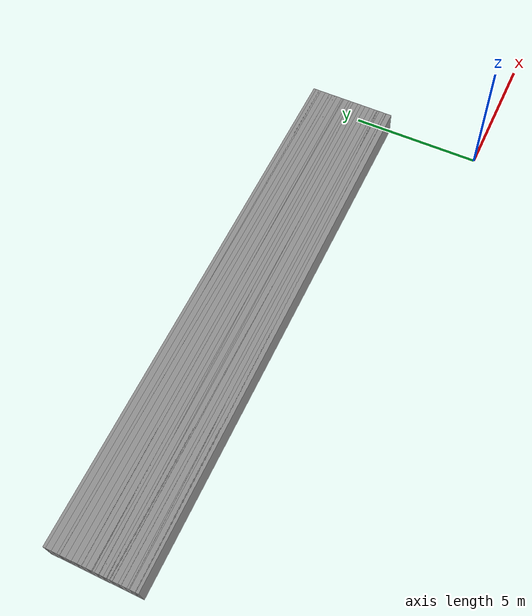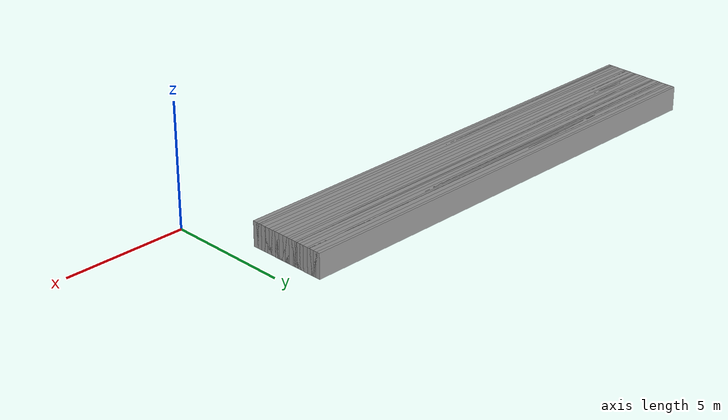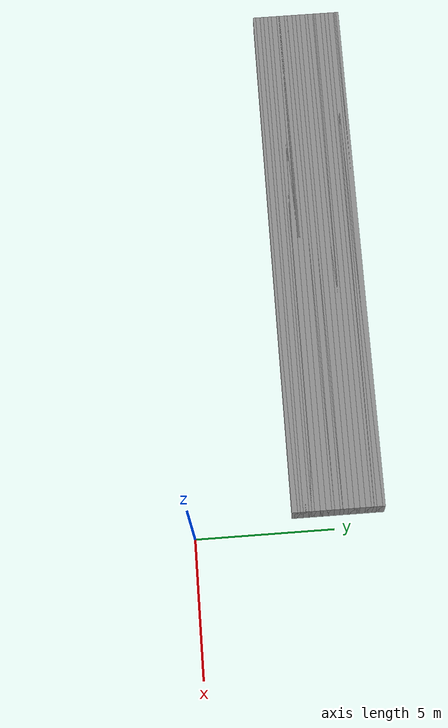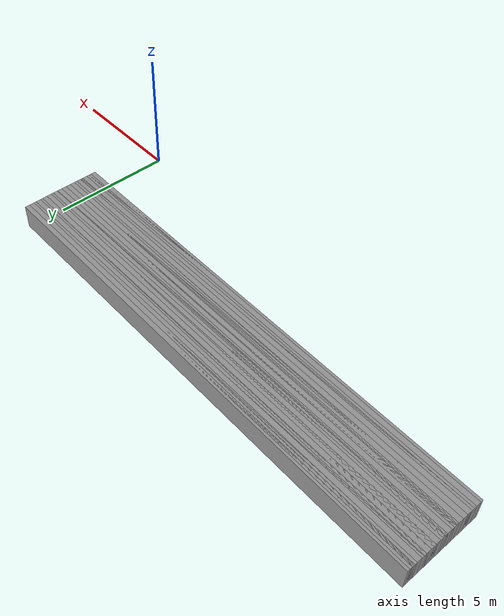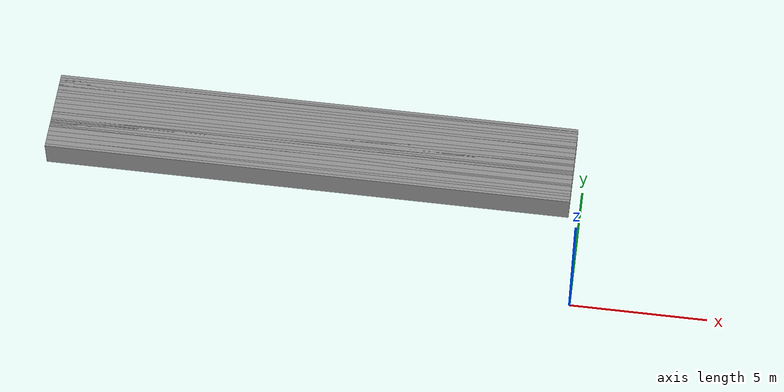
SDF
<sdf version="1.6">
 <world name="GridMap">
  <model name="GridMap">
   <link name="Wall_(101.5,36.0)">
    <collision name="Wall_(101.5,36.0)_Collision">
     <geometry><box><size>19.5 0.2 1.0</size></box></geometry>
     <pose>-10.15 3.6 0.5 0 -0 0</pose>
    </collision>
    <visual name="Wall_(101.5,36.0)_Visual">
     <geometry><box><size>19.5 0.2 1.0</size></box></geometry>
     <pose>-10.15 3.6 0.5 0 -0 0</pose>
     <material>
      <script><uri>file://media/materials/scripts/gazebo.material</uri><name>Gazebo/Grey</name></script>
      <ambient>1 1 1 1</ambient>
     </material>
     <meta><layer>0</layer></meta>
    </visual>
    <pose>0 0 0.5 0 -0 0</pose>
   </link>
   <link name="Wall_(101.5,37.0)">
    <collision name="Wall_(101.5,37.0)_Collision">
     <geometry><box><size>19.5 0.2 1.0</size></box></geometry>
     <pose>-10.15 3.7 0.5 0 -0 0</pose>
    </collision>
    <visual name="Wall_(101.5,37.0)_Visual">
     <geometry><box><size>19.5 0.2 1.0</size></box></geometry>
     <pose>-10.15 3.7 0.5 0 -0 0</pose>
     <material>
      <script><uri>file://media/materials/scripts/gazebo.material</uri><name>Gazebo/Grey</name></script>
      <ambient>1 1 1 1</ambient>
     </material>
     <meta><layer>0</layer></meta>
    </visual>
    <pose>0 0 0.5 0 -0 0</pose>
   </link>
   <link name="Wall_(101.5,38.0)">
    <collision name="Wall_(101.5,38.0)_Collision">
     <geometry><box><size>19.5 0.2 1.0</size></box></geometry>
     <pose>-10.15 3.8000000000000003 0.5 0 -0 0</pose>
    </collision>
    <visual name="Wall_(101.5,38.0)_Visual">
     <geometry><box><size>19.5 0.2 1.0</size></box></geometry>
     <pose>-10.15 3.8000000000000003 0.5 0 -0 0</pose>
     <material>
      <script><uri>file://media/materials/scripts/gazebo.material</uri><name>Gazebo/Grey</name></script>
      <ambient>1 1 1 1</ambient>
     </material>
     <meta><layer>0</layer></meta>
    </visual>
    <pose>0 0 0.5 0 -0 0</pose>
   </link>
   <link name="Wall_(101.5,39.0)">
    <collision name="Wall_(101.5,39.0)_Collision">
     <geometry><box><size>19.5 0.2 1.0</size></box></geometry>
     <pose>-10.15 3.9000000000000004 0.5 0 -0 0</pose>
    </collision>
    <visual name="Wall_(101.5,39.0)_Visual">
     <geometry><box><size>19.5 0.2 1.0</size></box></geometry>
     <pose>-10.15 3.9000000000000004 0.5 0 -0 0</pose>
     <material>
      <script><uri>file://media/materials/scripts/gazebo.material</uri><name>Gazebo/Grey</name></script>
      <ambient>1 1 1 1</ambient>
     </material>
     <meta><layer>0</layer></meta>
    </visual>
    <pose>0 0 0.5 0 -0 0</pose>
   </link>
   <link name="Wall_(101.5,40.0)">
    <collision name="Wall_(101.5,40.0)_Collision">
     <geometry><box><size>19.5 0.2 1.0</size></box></geometry>
     <pose>-10.15 4.0 0.5 0 -0 0</pose>
    </collision>
    <visual name="Wall_(101.5,40.0)_Visual">
     <geometry><box><size>19.5 0.2 1.0</size></box></geometry>
     <pose>-10.15 4.0 0.5 0 -0 0</pose>
     <material>
      <script><uri>file://media/materials/scripts/gazebo.material</uri><name>Gazebo/Grey</name></script>
      <ambient>1 1 1 1</ambient>
     </material>
     <meta><layer>0</layer></meta>
    </visual>
    <pose>0 0 0.5 0 -0 0</pose>
   </link>
   <link name="Wall_(101.5,41.0)">
    <collision name="Wall_(101.5,41.0)_Collision">
     <geometry><box><size>19.5 0.2 1.0</size></box></geometry>
     <pose>-10.15 4.1000000000000005 0.5 0 -0 0</pose>
    </collision>
    <visual name="Wall_(101.5,41.0)_Visual">
     <geometry><box><size>19.5 0.2 1.0</size></box></geometry>
     <pose>-10.15 4.1000000000000005 0.5 0 -0 0</pose>
     <material>
      <script><uri>file://media/materials/scripts/gazebo.material</uri><name>Gazebo/Grey</name></script>
      <ambient>1 1 1 1</ambient>
     </material>
     <meta><layer>0</layer></meta>
    </visual>
    <pose>0 0 0.5 0 -0 0</pose>
   </link>
   <link name="Wall_(101.5,42.0)">
    <collision name="Wall_(101.5,42.0)_Collision">
     <geometry><box><size>19.5 0.2 1.0</size></box></geometry>
     <pose>-10.15 4.2 0.5 0 -0 0</pose>
    </collision>
    <visual name="Wall_(101.5,42.0)_Visual">
     <geometry><box><size>19.5 0.2 1.0</size></box></geometry>
     <pose>-10.15 4.2 0.5 0 -0 0</pose>
     <material>
      <script><uri>file://media/materials/scripts/gazebo.material</uri><name>Gazebo/Grey</name></script>
      <ambient>1 1 1 1</ambient>
     </material>
     <meta><layer>0</layer></meta>
    </visual>
    <pose>0 0 0.5 0 -0 0</pose>
   </link>
   <link name="Wall_(101.5,43.0)">
    <collision name="Wall_(101.5,43.0)_Collision">
     <geometry><box><size>19.5 0.2 1.0</size></box></geometry>
     <pose>-10.15 4.3 0.5 0 -0 0</pose>
    </collision>
    <visual name="Wall_(101.5,43.0)_Visual">
     <geometry><box><size>19.5 0.2 1.0</size></box></geometry>
     <pose>-10.15 4.3 0.5 0 -0 0</pose>
     <material>
      <script><uri>file://media/materials/scripts/gazebo.material</uri><name>Gazebo/Grey</name></script>
      <ambient>1 1 1 1</ambient>
     </material>
     <meta><layer>0</layer></meta>
    </visual>
    <pose>0 0 0.5 0 -0 0</pose>
   </link>
   <link name="Wall_(101.5,44.0)">
    <collision name="Wall_(101.5,44.0)_Collision">
     <geometry><box><size>19.5 0.2 1.0</size></box></geometry>
     <pose>-10.15 4.4 0.5 0 -0 0</pose>
    </collision>
    <visual name="Wall_(101.5,44.0)_Visual">
     <geometry><box><size>19.5 0.2 1.0</size></box></geometry>
     <pose>-10.15 4.4 0.5 0 -0 0</pose>
     <material>
      <script><uri>file://media/materials/scripts/gazebo.material</uri><name>Gazebo/Grey</name></script>
      <ambient>1 1 1 1</ambient>
     </material>
     <meta><layer>0</layer></meta>
    </visual>
    <pose>0 0 0.5 0 -0 0</pose>
   </link>
   <link name="Wall_(101.5,45.0)">
    <collision name="Wall_(101.5,45.0)_Collision">
     <geometry><box><size>19.5 0.2 1.0</size></box></geometry>
     <pose>-10.15 4.5 0.5 0 -0 0</pose>
    </collision>
    <visual name="Wall_(101.5,45.0)_Visual">
     <geometry><box><size>19.5 0.2 1.0</size></box></geometry>
     <pose>-10.15 4.5 0.5 0 -0 0</pose>
     <material>
      <script><uri>file://media/materials/scripts/gazebo.material</uri><name>Gazebo/Grey</name></script>
      <ambient>1 1 1 1</ambient>
     </material>
     <meta><layer>0</layer></meta>
    </visual>
    <pose>0 0 0.5 0 -0 0</pose>
   </link>
   <link name="Wall_(101.5,46.0)">
    <collision name="Wall_(101.5,46.0)_Collision">
     <geometry><box><size>19.5 0.2 1.0</size></box></geometry>
     <pose>-10.15 4.6000000000000005 0.5 0 -0 0</pose>
    </collision>
    <visual name="Wall_(101.5,46.0)_Visual">
     <geometry><box><size>19.5 0.2 1.0</size></box></geometry>
     <pose>-10.15 4.6000000000000005 0.5 0 -0 0</pose>
     <material>
      <script><uri>file://media/materials/scripts/gazebo.material</uri><name>Gazebo/Grey</name></script>
      <ambient>1 1 1 1</ambient>
     </material>
     <meta><layer>0</layer></meta>
    </visual>
    <pose>0 0 0.5 0 -0 0</pose>
   </link>
   <link name="Wall_(101.5,47.0)">
    <collision name="Wall_(101.5,47.0)_Collision">
     <geometry><box><size>19.5 0.2 1.0</size></box></geometry>
     <pose>-10.15 4.7 0.5 0 -0 0</pose>
    </collision>
    <visual name="Wall_(101.5,47.0)_Visual">
     <geometry><box><size>19.5 0.2 1.0</size></box></geometry>
     <pose>-10.15 4.7 0.5 0 -0 0</pose>
     <material>
      <script><uri>file://media/materials/scripts/gazebo.material</uri><name>Gazebo/Grey</name></script>
      <ambient>1 1 1 1</ambient>
     </material>
     <meta><layer>0</layer></meta>
    </visual>
    <pose>0 0 0.5 0 -0 0</pose>
   </link>
   <link name="Wall_(101.5,48.0)">
    <collision name="Wall_(101.5,48.0)_Collision">
     <geometry><box><size>19.5 0.2 1.0</size></box></geometry>
     <pose>-10.15 4.800000000000001 0.5 0 -0 0</pose>
    </collision>
    <visual name="Wall_(101.5,48.0)_Visual">
     <geometry><box><size>19.5 0.2 1.0</size></box></geometry>
     <pose>-10.15 4.800000000000001 0.5 0 -0 0</pose>
     <material>
      <script><uri>file://media/materials/scripts/gazebo.material</uri><name>Gazebo/Grey</name></script>
      <ambient>1 1 1 1</ambient>
     </material>
     <meta><layer>0</layer></meta>
    </visual>
    <pose>0 0 0.5 0 -0 0</pose>
   </link>
   <link name="Wall_(101.5,49.0)">
    <collision name="Wall_(101.5,49.0)_Collision">
     <geometry><box><size>19.5 0.2 1.0</size></box></geometry>
     <pose>-10.15 4.9 0.5 0 -0 0</pose>
    </collision>
    <visual name="Wall_(101.5,49.0)_Visual">
     <geometry><box><size>19.5 0.2 1.0</size></box></geometry>
     <pose>-10.15 4.9 0.5 0 -0 0</pose>
     <material>
      <script><uri>file://media/materials/scripts/gazebo.material</uri><name>Gazebo/Grey</name></script>
      <ambient>1 1 1 1</ambient>
     </material>
     <meta><layer>0</layer></meta>
    </visual>
    <pose>0 0 0.5 0 -0 0</pose>
   </link>
   <link name="Wall_(101.5,50.0)">
    <collision name="Wall_(101.5,50.0)_Collision">
     <geometry><box><size>19.5 0.2 1.0</size></box></geometry>
     <pose>-10.15 5.0 0.5 0 -0 0</pose>
    </collision>
    <visual name="Wall_(101.5,50.0)_Visual">
     <geometry><box><size>19.5 0.2 1.0</size></box></geometry>
     <pose>-10.15 5.0 0.5 0 -0 0</pose>
     <material>
      <script><uri>file://media/materials/scripts/gazebo.material</uri><name>Gazebo/Grey</name></script>
      <ambient>1 1 1 1</ambient>
     </material>
     <meta><layer>0</layer></meta>
    </visual>
    <pose>0 0 0.5 0 -0 0</pose>
   </link>
   <link name="Wall_(101.5,51.0)">
    <collision name="Wall_(101.5,51.0)_Collision">
     <geometry><box><size>19.5 0.2 1.0</size></box></geometry>
     <pose>-10.15 5.1000000000000005 0.5 0 -0 0</pose>
    </collision>
    <visual name="Wall_(101.5,51.0)_Visual">
     <geometry><box><size>19.5 0.2 1.0</size></box></geometry>
     <pose>-10.15 5.1000000000000005 0.5 0 -0 0</pose>
     <material>
      <script><uri>file://media/materials/scripts/gazebo.material</uri><name>Gazebo/Grey</name></script>
      <ambient>1 1 1 1</ambient>
     </material>
     <meta><layer>0</layer></meta>
    </visual>
    <pose>0 0 0.5 0 -0 0</pose>
   </link>
   <link name="Wall_(101.5,52.0)">
    <collision name="Wall_(101.5,52.0)_Collision">
     <geometry><box><size>19.5 0.2 1.0</size></box></geometry>
     <pose>-10.15 5.2 0.5 0 -0 0</pose>
    </collision>
    <visual name="Wall_(101.5,52.0)_Visual">
     <geometry><box><size>19.5 0.2 1.0</size></box></geometry>
     <pose>-10.15 5.2 0.5 0 -0 0</pose>
     <material>
      <script><uri>file://media/materials/scripts/gazebo.material</uri><name>Gazebo/Grey</name></script>
      <ambient>1 1 1 1</ambient>
     </material>
     <meta><layer>0</layer></meta>
    </visual>
    <pose>0 0 0.5 0 -0 0</pose>
   </link>
   <link name="Wall_(101.5,53.0)">
    <collision name="Wall_(101.5,53.0)_Collision">
     <geometry><box><size>19.5 0.2 1.0</size></box></geometry>
     <pose>-10.15 5.300000000000001 0.5 0 -0 0</pose>
    </collision>
    <visual name="Wall_(101.5,53.0)_Visual">
     <geometry><box><size>19.5 0.2 1.0</size></box></geometry>
     <pose>-10.15 5.300000000000001 0.5 0 -0 0</pose>
     <material>
      <script><uri>file://media/materials/scripts/gazebo.material</uri><name>Gazebo/Grey</name></script>
      <ambient>1 1 1 1</ambient>
     </material>
     <meta><layer>0</layer></meta>
    </visual>
    <pose>0 0 0.5 0 -0 0</pose>
   </link>
   <link name="Wall_(101.5,54.0)">
    <collision name="Wall_(101.5,54.0)_Collision">
     <geometry><box><size>19.5 0.2 1.0</size></box></geometry>
     <pose>-10.15 5.4 0.5 0 -0 0</pose>
    </collision>
    <visual name="Wall_(101.5,54.0)_Visual">
     <geometry><box><size>19.5 0.2 1.0</size></box></geometry>
     <pose>-10.15 5.4 0.5 0 -0 0</pose>
     <material>
      <script><uri>file://media/materials/scripts/gazebo.material</uri><name>Gazebo/Grey</name></script>
      <ambient>1 1 1 1</ambient>
     </material>
     <meta><layer>0</layer></meta>
    </visual>
    <pose>0 0 0.5 0 -0 0</pose>
   </link>
   <link name="Wall_(101.5,55.0)">
    <collision name="Wall_(101.5,55.0)_Collision">
     <geometry><box><size>19.5 0.2 1.0</size></box></geometry>
     <pose>-10.15 5.5 0.5 0 -0 0</pose>
    </collision>
    <visual name="Wall_(101.5,55.0)_Visual">
     <geometry><box><size>19.5 0.2 1.0</size></box></geometry>
     <pose>-10.15 5.5 0.5 0 -0 0</pose>
     <material>
      <script><uri>file://media/materials/scripts/gazebo.material</uri><name>Gazebo/Grey</name></script>
      <ambient>1 1 1 1</ambient>
     </material>
     <meta><layer>0</layer></meta>
    </visual>
    <pose>0 0 0.5 0 -0 0</pose>
   </link>
   <link name="Wall_(101.5,56.0)">
    <collision name="Wall_(101.5,56.0)_Collision">
     <geometry><box><size>19.5 0.2 1.0</size></box></geometry>
     <pose>-10.15 5.6000000000000005 0.5 0 -0 0</pose>
    </collision>
    <visual name="Wall_(101.5,56.0)_Visual">
     <geometry><box><size>19.5 0.2 1.0</size></box></geometry>
     <pose>-10.15 5.6000000000000005 0.5 0 -0 0</pose>
     <material>
      <script><uri>file://media/materials/scripts/gazebo.material</uri><name>Gazebo/Grey</name></script>
      <ambient>1 1 1 1</ambient>
     </material>
     <meta><layer>0</layer></meta>
    </visual>
    <pose>0 0 0.5 0 -0 0</pose>
   </link>
   <link name="Wall_(101.5,57.0)">
    <collision name="Wall_(101.5,57.0)_Collision">
     <geometry><box><size>19.5 0.2 1.0</size></box></geometry>
     <pose>-10.15 5.7 0.5 0 -0 0</pose>
    </collision>
    <visual name="Wall_(101.5,57.0)_Visual">
     <geometry><box><size>19.5 0.2 1.0</size></box></geometry>
     <pose>-10.15 5.7 0.5 0 -0 0</pose>
     <material>
      <script><uri>file://media/materials/scripts/gazebo.material</uri><name>Gazebo/Grey</name></script>
      <ambient>1 1 1 1</ambient>
     </material>
     <meta><layer>0</layer></meta>
    </visual>
    <pose>0 0 0.5 0 -0 0</pose>
   </link>
   <link name="Wall_(101.5,58.0)">
    <collision name="Wall_(101.5,58.0)_Collision">
     <geometry><box><size>19.5 0.2 1.0</size></box></geometry>
     <pose>-10.15 5.800000000000001 0.5 0 -0 0</pose>
    </collision>
    <visual name="Wall_(101.5,58.0)_Visual">
     <geometry><box><size>19.5 0.2 1.0</size></box></geometry>
     <pose>-10.15 5.800000000000001 0.5 0 -0 0</pose>
     <material>
      <script><uri>file://media/materials/scripts/gazebo.material</uri><name>Gazebo/Grey</name></script>
      <ambient>1 1 1 1</ambient>
     </material>
     <meta><layer>0</layer></meta>
    </visual>
    <pose>0 0 0.5 0 -0 0</pose>
   </link>
   <link name="Wall_(101.5,59.0)">
    <collision name="Wall_(101.5,59.0)_Collision">
     <geometry><box><size>19.5 0.2 1.0</size></box></geometry>
     <pose>-10.15 5.9 0.5 0 -0 0</pose>
    </collision>
    <visual name="Wall_(101.5,59.0)_Visual">
     <geometry><box><size>19.5 0.2 1.0</size></box></geometry>
     <pose>-10.15 5.9 0.5 0 -0 0</pose>
     <material>
      <script><uri>file://media/materials/scripts/gazebo.material</uri><name>Gazebo/Grey</name></script>
      <ambient>1 1 1 1</ambient>
     </material>
     <meta><layer>0</layer></meta>
    </visual>
    <pose>0 0 0.5 0 -0 0</pose>
   </link>
   <link name="Wall_(101.5,60.0)">
    <collision name="Wall_(101.5,60.0)_Collision">
     <geometry><box><size>19.5 0.2 1.0</size></box></geometry>
     <pose>-10.15 6.0 0.5 0 -0 0</pose>
    </collision>
    <visual name="Wall_(101.5,60.0)_Visual">
     <geometry><box><size>19.5 0.2 1.0</size></box></geometry>
     <pose>-10.15 6.0 0.5 0 -0 0</pose>
     <material>
      <script><uri>file://media/materials/scripts/gazebo.material</uri><name>Gazebo/Grey</name></script>
      <ambient>1 1 1 1</ambient>
     </material>
     <meta><layer>0</layer></meta>
    </visual>
    <pose>0 0 0.5 0 -0 0</pose>
   </link>
   <link name="Wall_(101.5,61.0)">
    <collision name="Wall_(101.5,61.0)_Collision">
     <geometry><box><size>19.5 0.2 1.0</size></box></geometry>
     <pose>-10.15 6.1000000000000005 0.5 0 -0 0</pose>
    </collision>
    <visual name="Wall_(101.5,61.0)_Visual">
     <geometry><box><size>19.5 0.2 1.0</size></box></geometry>
     <pose>-10.15 6.1000000000000005 0.5 0 -0 0</pose>
     <material>
      <script><uri>file://media/materials/scripts/gazebo.material</uri><name>Gazebo/Grey</name></script>
      <ambient>1 1 1 1</ambient>
     </material>
     <meta><layer>0</layer></meta>
    </visual>
    <pose>0 0 0.5 0 -0 0</pose>
   </link>
   <link name="Wall_(101.5,62.0)">
    <collision name="Wall_(101.5,62.0)_Collision">
     <geometry><box><size>19.5 0.2 1.0</size></box></geometry>
     <pose>-10.15 6.2 0.5 0 -0 0</pose>
    </collision>
    <visual name="Wall_(101.5,62.0)_Visual">
     <geometry><box><size>19.5 0.2 1.0</size></box></geometry>
     <pose>-10.15 6.2 0.5 0 -0 0</pose>
     <material>
      <script><uri>file://media/materials/scripts/gazebo.material</uri><name>Gazebo/Grey</name></script>
      <ambient>1 1 1 1</ambient>
     </material>
     <meta><layer>0</layer></meta>
    </visual>
    <pose>0 0 0.5 0 -0 0</pose>
   </link>
   <link name="Wall_(101.5,63.0)">
    <collision name="Wall_(101.5,63.0)_Collision">
     <geometry><box><size>19.5 0.2 1.0</size></box></geometry>
     <pose>-10.15 6.300000000000001 0.5 0 -0 0</pose>
    </collision>
    <visual name="Wall_(101.5,63.0)_Visual">
     <geometry><box><size>19.5 0.2 1.0</size></box></geometry>
     <pose>-10.15 6.300000000000001 0.5 0 -0 0</pose>
     <material>
      <script><uri>file://media/materials/scripts/gazebo.material</uri><name>Gazebo/Grey</name></script>
      <ambient>1 1 1 1</ambient>
     </material>
     <meta><layer>0</layer></meta>
    </visual>
    <pose>0 0 0.5 0 -0 0</pose>
   </link>
   <link name="Wall_(101.5,64.0)">
    <collision name="Wall_(101.5,64.0)_Collision">
     <geometry><box><size>19.5 0.2 1.0</size></box></geometry>
     <pose>-10.15 6.4 0.5 0 -0 0</pose>
    </collision>
    <visual name="Wall_(101.5,64.0)_Visual">
     <geometry><box><size>19.5 0.2 1.0</size></box></geometry>
     <pose>-10.15 6.4 0.5 0 -0 0</pose>
     <material>
      <script><uri>file://media/materials/scripts/gazebo.material</uri><name>Gazebo/Grey</name></script>
      <ambient>1 1 1 1</ambient>
     </material>
     <meta><layer>0</layer></meta>
    </visual>
    <pose>0 0 0.5 0 -0 0</pose>
   </link>
   <link name="Wall_(101.5,65.0)">
    <collision name="Wall_(101.5,65.0)_Collision">
     <geometry><box><size>19.5 0.2 1.0</size></box></geometry>
     <pose>-10.15 6.5 0.5 0 -0 0</pose>
    </collision>
    <visual name="Wall_(101.5,65.0)_Visual">
     <geometry><box><size>19.5 0.2 1.0</size></box></geometry>
     <pose>-10.15 6.5 0.5 0 -0 0</pose>
     <material>
      <script><uri>file://media/materials/scripts/gazebo.material</uri><name>Gazebo/Grey</name></script>
      <ambient>1 1 1 1</ambient>
     </material>
     <meta><layer>0</layer></meta>
    </visual>
    <pose>0 0 0.5 0 -0 0</pose>
   </link>
   <link name="Wall_(101.5,66.0)">
    <collision name="Wall_(101.5,66.0)_Collision">
     <geometry><box><size>19.5 0.2 1.0</size></box></geometry>
     <pose>-10.15 6.6000000000000005 0.5 0 -0 0</pose>
    </collision>
    <visual name="Wall_(101.5,66.0)_Visual">
     <geometry><box><size>19.5 0.2 1.0</size></box></geometry>
     <pose>-10.15 6.6000000000000005 0.5 0 -0 0</pose>
     <material>
      <script><uri>file://media/materials/scripts/gazebo.material</uri><name>Gazebo/Grey</name></script>
      <ambient>1 1 1 1</ambient>
     </material>
     <meta><layer>0</layer></meta>
    </visual>
    <pose>0 0 0.5 0 -0 0</pose>
   </link>
   <link name="Wall_(101.5,67.0)">
    <collision name="Wall_(101.5,67.0)_Collision">
     <geometry><box><size>19.5 0.2 1.0</size></box></geometry>
     <pose>-10.15 6.7 0.5 0 -0 0</pose>
    </collision>
    <visual name="Wall_(101.5,67.0)_Visual">
     <geometry><box><size>19.5 0.2 1.0</size></box></geometry>
     <pose>-10.15 6.7 0.5 0 -0 0</pose>
     <material>
      <script><uri>file://media/materials/scripts/gazebo.material</uri><name>Gazebo/Grey</name></script>
      <ambient>1 1 1 1</ambient>
     </material>
     <meta><layer>0</layer></meta>
    </visual>
    <pose>0 0 0.5 0 -0 0</pose>
   </link>
   <static>1</static>
  </model>
 </world>
</sdf>
